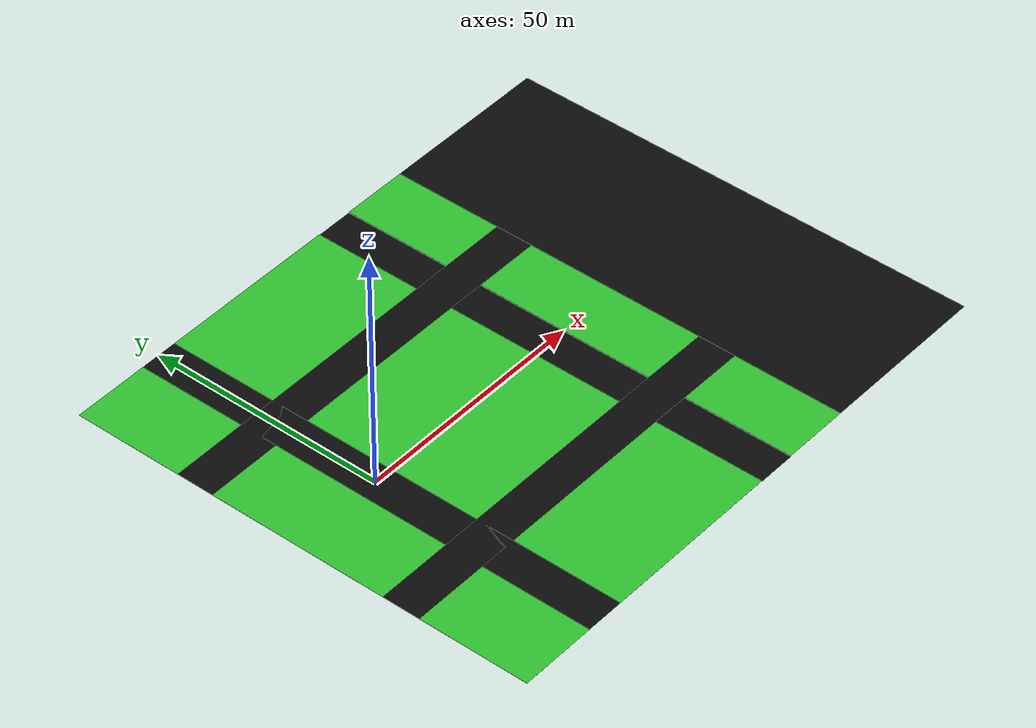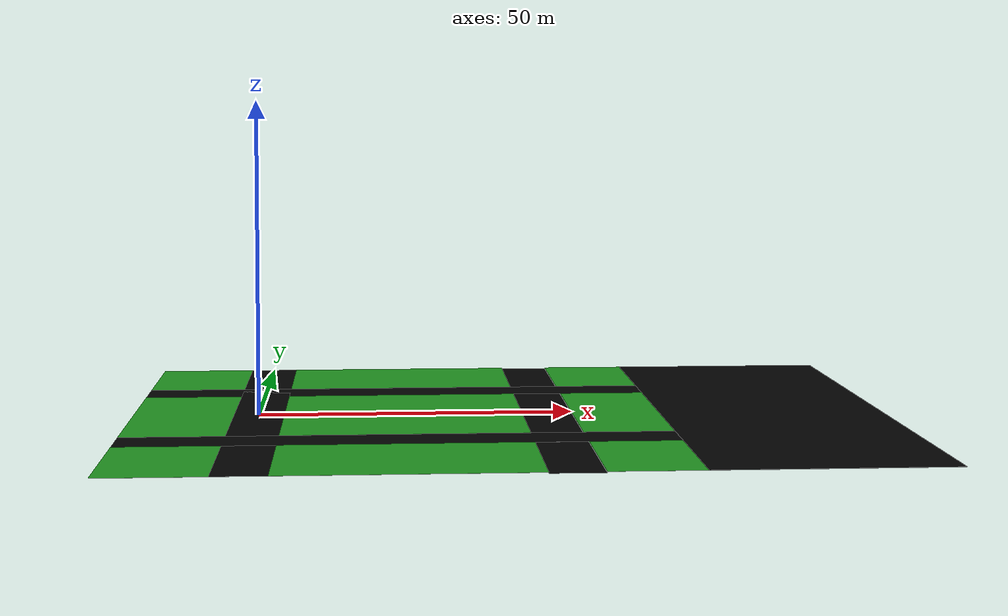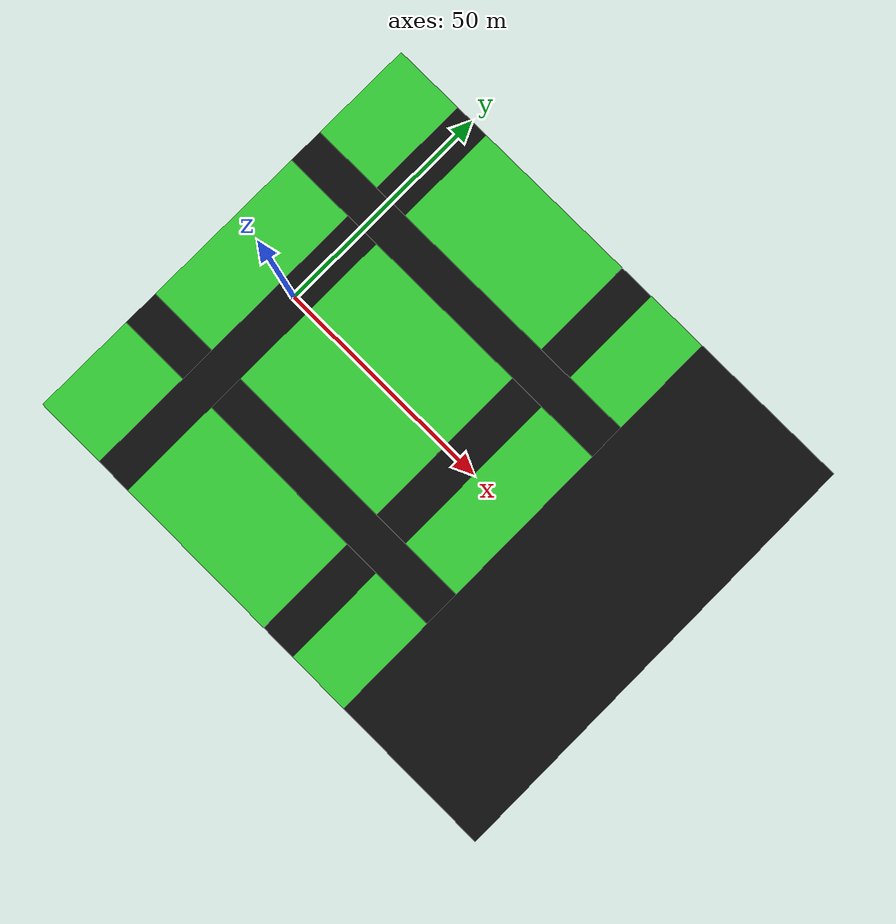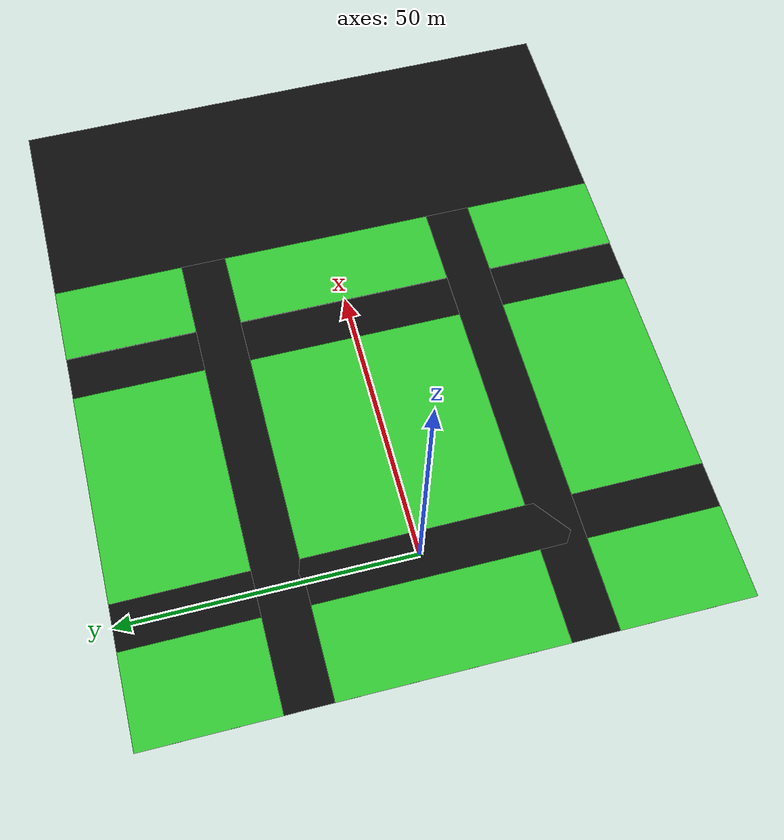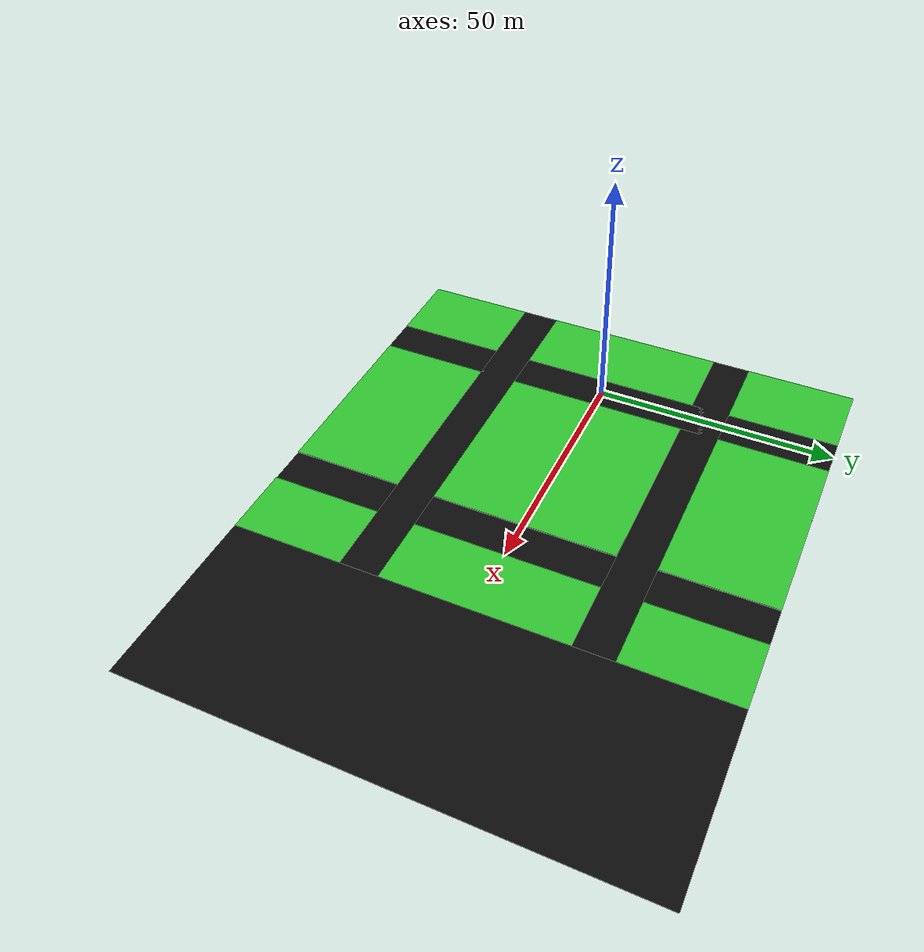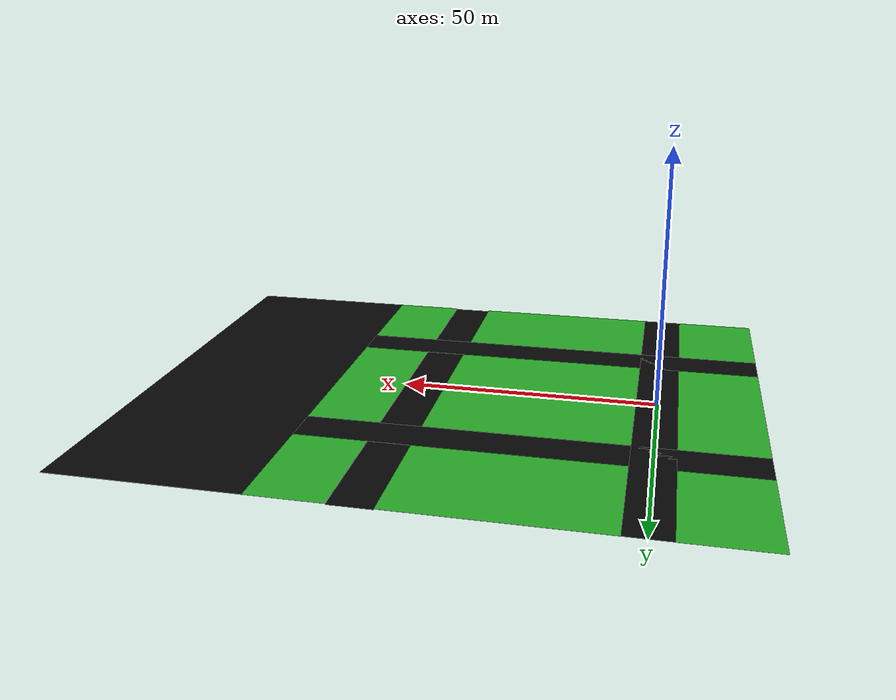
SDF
<sdf version="1.7">
  <model name="ground">
    <static>true</static>
    <link name="ground_collision">
      <collision name="ground_collision">
        <pose>25 0 0 0 0 0</pose>
        <geometry>
          <plane>
            <normal>0 0 1</normal>
          </plane>
        </geometry>
      </collision>
    </link>

	<include>
    <uri>
    model://models/ground/streets
    </uri>
	</include>

  <include>
    <uri>
    model://models/ground/lawns
    </uri>
	</include>

  </model>

</sdf>

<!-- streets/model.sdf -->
<sdf version="1.7">
  <model name="streets">
      <static>true</static>

      <link name="north_street">
        <visual name="visual">
          <pose>46 0 0 0 0 0</pose>
            <geometry>
              <plane>
                <normal>0 0 1</normal>
                <size>8 100</size>
              </plane>
            </geometry>
          <material>
            <ambient>0.05 0.05 0.05 1</ambient>
            <diffuse>0.05 0.05 0.05 1</diffuse>
            <specular>0.1 0.1 0.1 1</specular>
          </material>
        </visual>
      </link>

      <link name="south_street">
        <visual name="visual">
          <pose>0 0 0 0 0 0</pose>
            <geometry>
              <plane>
                <normal>0 0 1</normal>
                <size>8 100</size>
              </plane>
            </geometry>
          <material>
            <ambient>0.05 0.05 0.05 1</ambient>
            <diffuse>0.05 0.05 0.05 1</diffuse>
            <specular>0.1 0.1 0.1 1</specular>
          </material>
        </visual>
      </link>

      <link name="west_street">
        <visual name="visual">
          <pose>40 23 0 0 0 0</pose>
            <geometry>
              <plane>
                <normal>0 0 1</normal>
                <size>120 8</size>
              </plane>
            </geometry>
          <material>
            <ambient>0.05 0.05 0.05 1</ambient>
            <diffuse>0.05 0.05 0.05 1</diffuse>
            <specular>0.1 0.1 0.1 1</specular>
          </material>
        </visual>
      </link>

      <link name="east_street">
        <visual name="visual">
          <pose>40 -23 0 0 0 0</pose>
            <geometry>
              <plane>
                <normal>0 0 1</normal>
                <size>120 8</size>
              </plane>
            </geometry>
          <material>
            <ambient>0.05 0.05 0.05 1</ambient>
            <diffuse>0.05 0.05 0.05 1</diffuse>
            <specular>0.1 0.1 0.1 1</specular>
          </material>
        </visual>
      </link>

      <link name="parking">
        <visual name="visual">
          <pose>82 0 0 0 0 0</pose>
            <geometry>
              <plane>
                <normal>0 0 1</normal>
                <size>36 100</size>
              </plane>
            </geometry>
          <material>
            <ambient>0.05 0.05 0.05 1</ambient>
            <diffuse>0.05 0.05 0.05 1</diffuse>
            <specular>0.1 0.1 0.1 1</specular>
          </material>
        </visual>
      </link>

  </model>
</sdf>

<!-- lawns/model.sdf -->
<sdf version="1.7">
  <model name="lawns">
      <static>true</static>

      <link name="north_lawn">
        <visual name="visual">
          <pose>57 0 0 0 0 0</pose>
            <geometry>
              <plane>
                <normal>0 0 1</normal>
                <size>14 38</size>
              </plane>
            </geometry>
          <material>
            <ambient>0.2 0.8 0.2 1</ambient>
            <diffuse>0.2 0.8 0.2 1</diffuse>
            <specular>0.1 0.1 0.1 1</specular>
          </material>
        </visual>
      </link>

      <link name="middle_lawn">
        <visual name="visual">
          <pose>23 0 0 0 0 0</pose>
            <geometry>
              <plane>
                <normal>0 0 1</normal>
                <size>38 38</size>
              </plane>
            </geometry>
          <material>
            <ambient>0.2 0.8 0.2 1</ambient>
            <diffuse>0.2 0.8 0.2 1</diffuse>
            <specular>0.1 0.1 0.1 1</specular>
          </material>
        </visual>
      </link>

      <link name="south_lawn">
        <visual name="visual">
          <pose>-12 0 0 0 0 0</pose>
            <geometry>
              <plane>
                <normal>0 0 1</normal>
                <size>16 38</size>
              </plane>
            </geometry>
          <material>
            <ambient>0.2 0.8 0.2 1</ambient>
            <diffuse>0.2 0.8 0.2 1</diffuse>
            <specular>0.1 0.1 0.1 1</specular>
          </material>
        </visual>
      </link>

      <link name="west_lawn">
        <visual name="visual">
          <pose>23 38.5 0 0 0 0</pose>
            <geometry>
              <plane>
                <normal>0 0 1</normal>
                <size>38 23</size>
              </plane>
            </geometry>
          <material>
            <ambient>0.2 0.8 0.2 1</ambient>
            <diffuse>0.2 0.8 0.2 1</diffuse>
            <specular>0.1 0.1 0.1 1</specular>
          </material>
        </visual>
      </link>

      <link name="east_lawn">
        <visual name="visual">
          <pose>23 -38.5 0 0 0 0</pose>
            <geometry>
              <plane>
                <normal>0 0 1</normal>
                <size>38 23</size>
              </plane>
            </geometry>
          <material>
            <ambient>0.2 0.8 0.2 1</ambient>
            <diffuse>0.2 0.8 0.2 1</diffuse>
            <specular>0.1 0.1 0.1 1</specular>
          </material>
        </visual>
      </link>

      <link name="northwest_lawn">
        <visual name="visual">
          <pose>57 38.5 0 0 0 0</pose>
            <geometry>
              <plane>
                <normal>0 0 1</normal>
                <size>14 23</size>
              </plane>
            </geometry>
          <material>
            <ambient>0.2 0.8 0.2 1</ambient>
            <diffuse>0.2 0.8 0.2 1</diffuse>
            <specular>0.1 0.1 0.1 1</specular>
          </material>
        </visual>
      </link>

      <link name="northeast_lawn">
        <visual name="visual">
          <pose>57 -38.5 0 0 0 0</pose>
            <geometry>
              <plane>
                <normal>0 0 1</normal>
                <size>14 23</size>
              </plane>
            </geometry>
          <material>
            <ambient>0.2 0.8 0.2 1</ambient>
            <diffuse>0.2 0.8 0.2 1</diffuse>
            <specular>0.1 0.1 0.1 1</specular>
          </material>
        </visual>
      </link>

      <link name="southwest_lawn">
        <visual name="visual">
          <pose>-12 -38.5 0 0 0 0</pose>
            <geometry>
              <plane>
                <normal>0 0 1</normal>
                <size>16 23</size>
              </plane>
            </geometry>
          <material>
            <ambient>0.2 0.8 0.2 1</ambient>
            <diffuse>0.2 0.8 0.2 1</diffuse>
            <specular>0.1 0.1 0.1 1</specular>
          </material>
        </visual>
      </link>

      <link name="southeast_lawn">
        <visual name="visual">
          <pose>-12 38.5 0 0 0 0</pose>
            <geometry>
              <plane>
                <normal>0 0 1</normal>
                <size>16 23</size>
              </plane>
            </geometry>
          <material>
            <ambient>0.2 0.8 0.2 1</ambient>
            <diffuse>0.2 0.8 0.2 1</diffuse>
            <specular>0.1 0.1 0.1 1</specular>
          </material>
        </visual>
      </link>

  </model>

</sdf>
